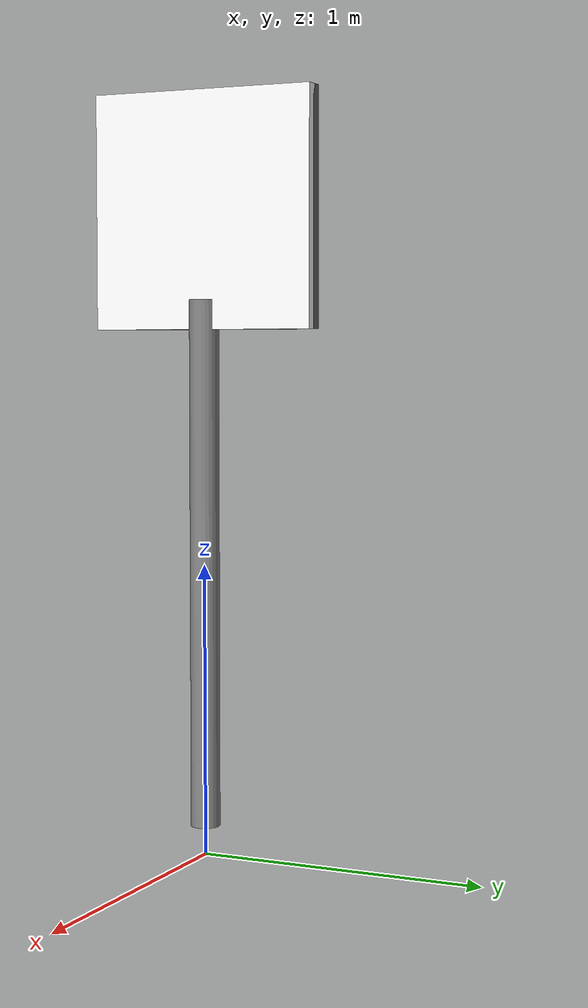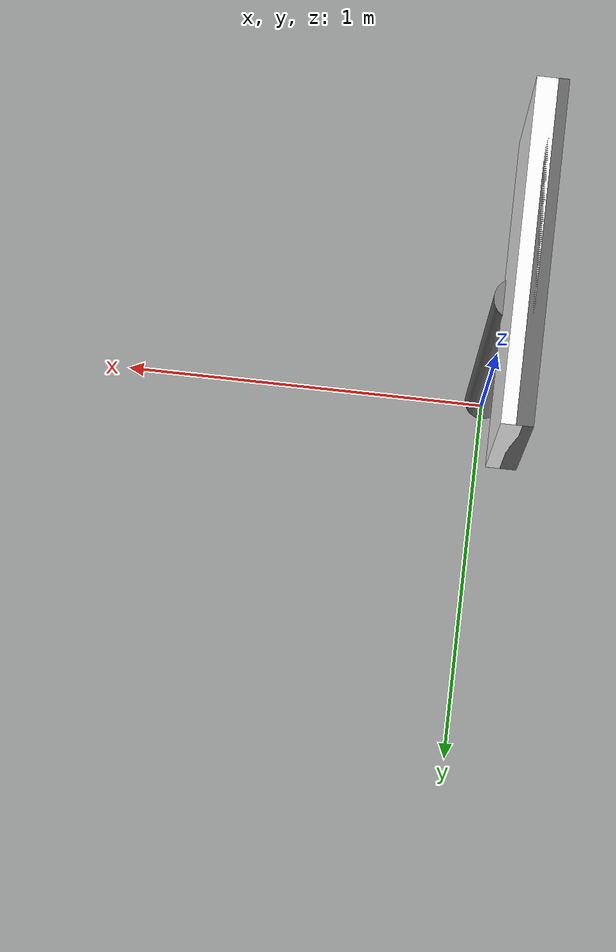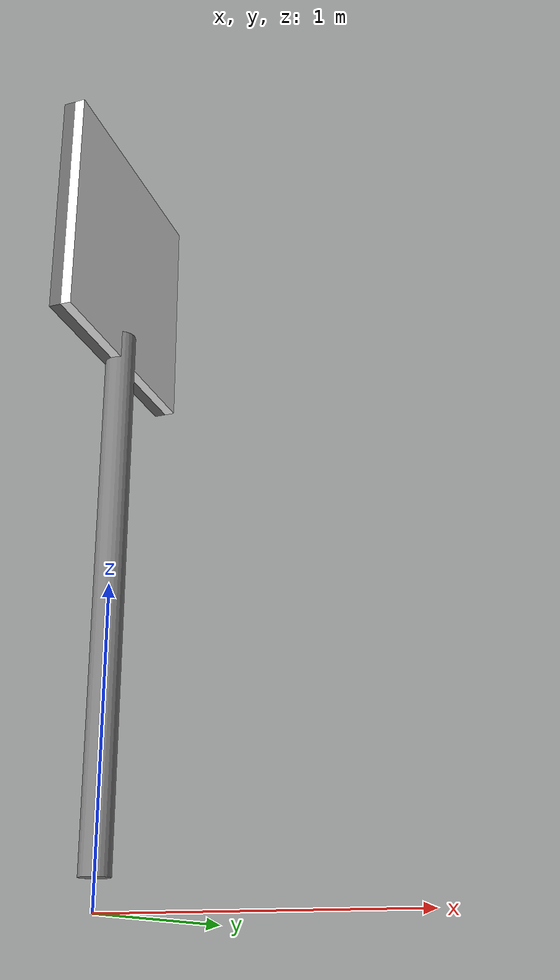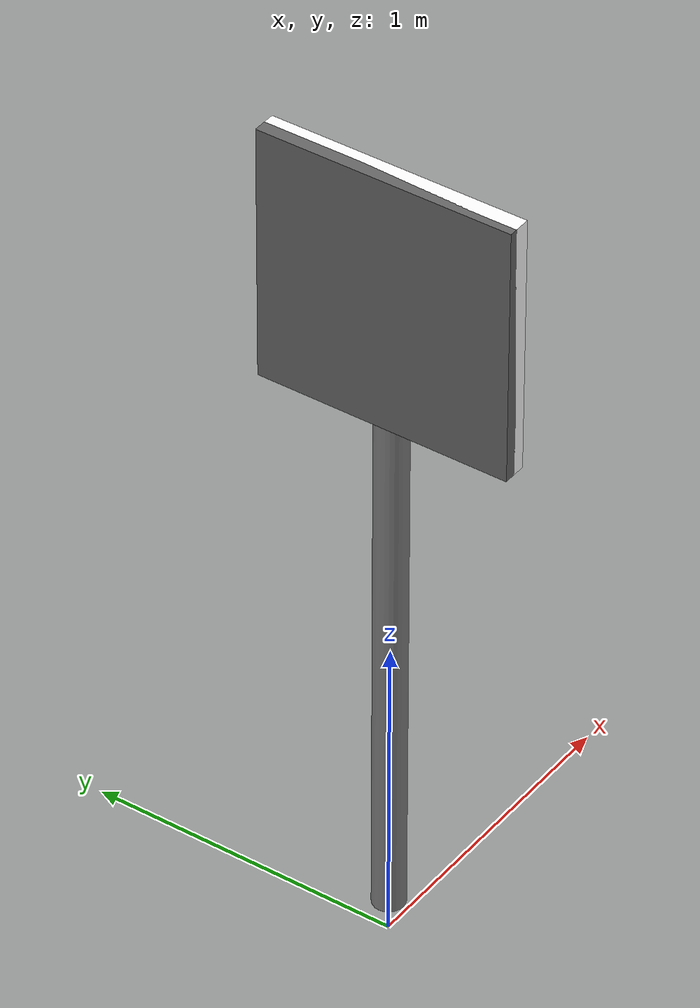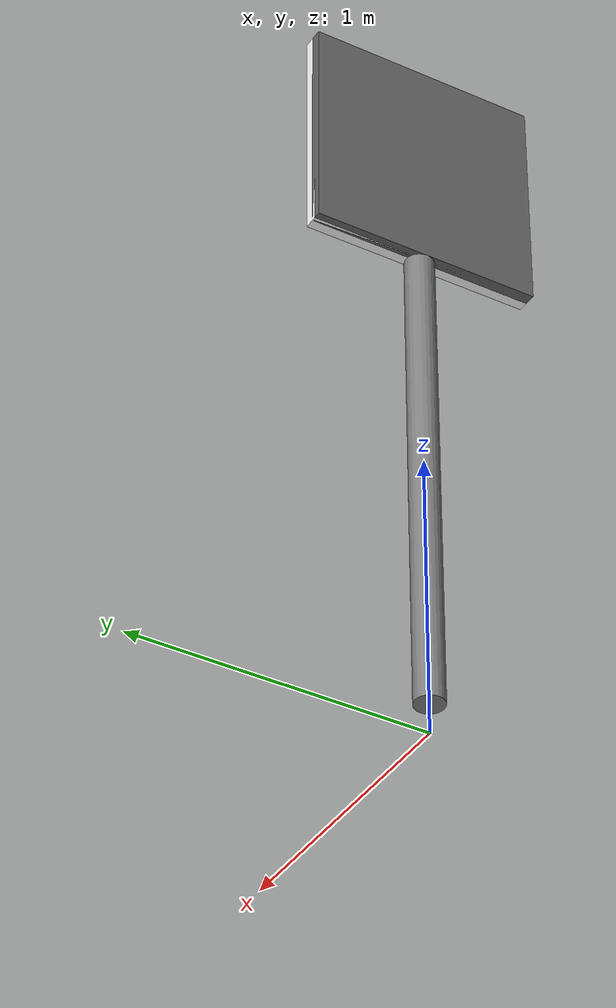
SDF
<?xml version="1.0" ?>
<sdf version="1.10">
  <model name="ileri_ve_sola">

    <!-- Çarpıp devrilmemesi veya yere düşmemesi için sabitliyoruz -->
    <static>true</static>

    <link name="link">

      <!-- ================= DİREK KISMI ================= -->
      <!-- Direğin Fiziksel Çarpışma Alanı -->
      <collision name="direk_collision">
        <pose>0 0 1.0 0 0 0</pose> <!-- Yerden 1 metre yukarıda merkezi var -->
        <geometry>
          <cylinder>
            <radius>0.05</radius> <!-- 5 cm yarıçap -->
            <length>1.8</length>  <!-- 2 metre uzunluk -->
          </cylinder>
        </geometry>
      </collision>

      <!-- Direğin Görseli -->
      <visual name="direk_visual">
        <pose>0 0 1.0 0 0 0</pose>
        <geometry>
          <cylinder>
            <radius>0.05</radius>
            <length>1.8</length>
          </cylinder>
        </geometry>
        <material>
          <!-- Direk için basit gri renk -->
          <ambient>0.5 0.5 0.5 1</ambient>
          <diffuse>0.5 0.5 0.5 1</diffuse>
        </material>
      </visual>

      <!-- ================= TABELA KISMI ================= -->
      <!-- Tabelanın Fiziksel Çarpışma Alanı -->
      <collision name="tabela_collision">
        <pose>0 0 2.2 0 0 0</pose> <!-- Direğin tepesinde (2.2 metre yüksekte) -->
        <geometry>
          <box>
            <size>0.05 0.8 0.8</size> <!-- Kalınlık: 5cm, Genişlik: 80cm, Boy: 80cm -->
          </box>
        </geometry>
      </collision>

      <!-- Tabelanın Arka Paneli — arka yüzde PNG görünüp algıyı şaşırtmasın diye gri kapak -->
      <visual name="tabela_arka_visual">
        <pose>-0.03 0 2.2 0 0 0</pose>
        <geometry>
          <box>
            <size>0.04 0.8 0.8</size>
          </box>
        </geometry>
        <material>
          <ambient>0.4 0.4 0.4 1</ambient>
          <diffuse>0.4 0.4 0.4 1</diffuse>
        </material>
      </visual>

      <!-- Tabelanın Görseli (İşte PNG Buraya Geliyor) -->
      <visual name="tabela_visual">
        <pose>0 0 2.2 0 0 0</pose>
        <geometry>
          <box>
            <size>0.05 0.8 0.8</size>
          </box>
        </geometry>
        <material>
          <ambient>1 1 1 1</ambient>
          <diffuse>1 1 1 1</diffuse>
          <pbr>
            <metal>
              <!-- DİKKAT: Buradaki yolu kendi klasör adına ve resmine göre düzenle -->
              <albedo_map>model://ileri_ve_sola/materials/ileri_ve_sola.png</albedo_map>
            </metal>
          </pbr>
        </material>
      </visual>

    </link>
  </model>
</sdf>
